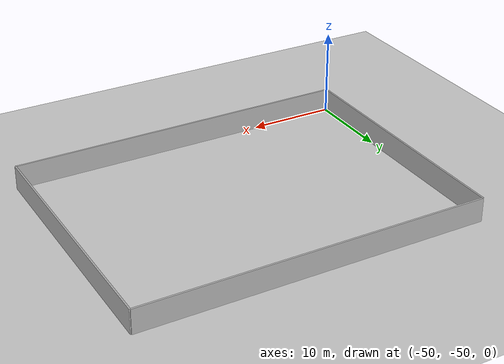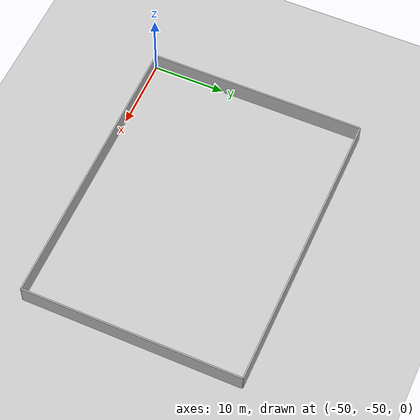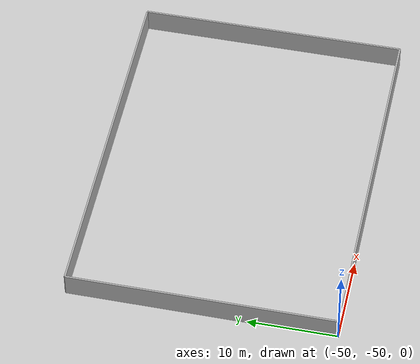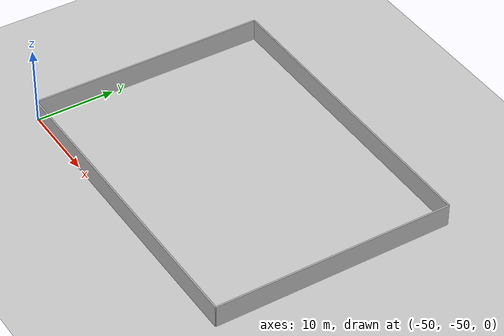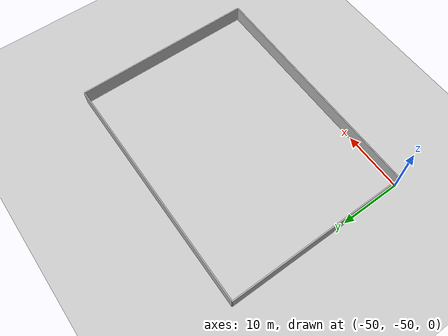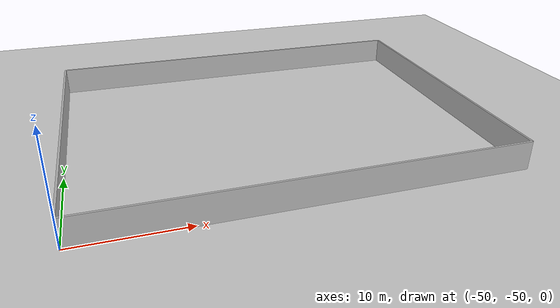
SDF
<sdf version="1.6">
 <world name="default">
  <model name="ground_plane">
   <static>1</static>
   <link name="link">
    <collision name="collision">
     <geometry><plane><normal>0 0 1</normal><size>100 100</size></plane></geometry>
     <surface>
      <contact><collide_bitmask>65535</collide_bitmask></contact>
      <friction><ode><mu>100</mu><mu2>50</mu2></ode></friction>
     </surface>
    </collision>
    <visual name="visual">
     <cast_shadows>0</cast_shadows>
     <geometry><plane><normal>0 0 1</normal><size>100 100</size></plane></geometry>
     <material>
      <script><uri>file://media/materials/scripts/gazebo.material</uri><name>Gazebo/Grey</name></script>
     </material>
    </visual>
   </link>
  </model>
  <model name="concrete_wall">
   <static>1</static>
   <link name="link_1">
    <pose>20 0 1.4 0 -0 0</pose>
    <inertial>
     <inertia><ixx>nan</ixx><ixy>0</ixy><ixz>0</ixz><iyy>nan</iyy><iyz>0</iyz><izz>nan</izz></inertia>
     <mass>0</mass>
    </inertial>
    <visual name="visual_1">
     <cast_shadows>0</cast_shadows>
     <geometry><box><size>40 0.2 2.8</size></box></geometry>
     <material>
      <script>
       <uri>model://env_wall/concrete_wall/materials/scripts</uri>
       <uri>model://env_wall/concrete_wall/materials/textures</uri>
       <name>vrc/concrete_wall</name>
      </script>
      <ambient>1 0.764706 0.305882 1</ambient>
      <shader type="pixel"/>
      <diffuse>0.7 0.7 0.7 1</diffuse>
      <specular>0.01 0.01 0.01 1</specular>
      <emissive>0 0 0 1</emissive>
     </material>
    </visual>
    <collision name="collision_1">
     <geometry><box><size>40 0.2 2.8</size></box></geometry>
     <surface>
      <friction>
       <ode><mu>1</mu><mu2>1</mu2><fdir1>0 0 0</fdir1><slip1>0</slip1><slip2>0</slip2></ode>
       <torsional>
        <coefficient>1</coefficient>
        <patch_radius>0</patch_radius>
        <surface_radius>0</surface_radius>
        <use_patch_radius>1</use_patch_radius>
        <ode><slip>0</slip></ode>
       </torsional>
      </friction>
      <bounce><restitution_coefficient>0</restitution_coefficient><threshold>1e+06</threshold></bounce>
      <contact>
       <collide_without_contact>0</collide_without_contact>
       <collide_without_contact_bitmask>1</collide_without_contact_bitmask>
       <collide_bitmask>1</collide_bitmask>
       <ode>
        <soft_cfm>0</soft_cfm>
        <soft_erp>0.2</soft_erp>
        <kp>1e+13</kp>
        <kd>1</kd>
        <max_vel>0.01</max_vel>
        <min_depth>0</min_depth>
       </ode>
       <bullet>
        <split_impulse>1</split_impulse>
        <split_impulse_penetration_threshold>-0.01</split_impulse_penetration_threshold>
        <soft_cfm>0</soft_cfm>
        <soft_erp>0.2</soft_erp>
        <kp>1e+13</kp>
        <kd>1</kd>
       </bullet>
      </contact>
     </surface>
    </collision>
   </link>
   <link name="link_2">
    <pose>20 30 1.4 0 -0 0</pose>
    <inertial>
     <inertia><ixx>nan</ixx><ixy>0</ixy><ixz>0</ixz><iyy>nan</iyy><iyz>0</iyz><izz>nan</izz></inertia>
     <mass>0</mass>
    </inertial>
    <visual name="visual_2">
     <cast_shadows>0</cast_shadows>
     <geometry><box><size>40 0.2 2.8</size></box></geometry>
     <material>
      <script>
       <uri>model://env_wall/concrete_wall/materials/scripts</uri>
       <uri>model://env_wall/concrete_wall/materials/textures</uri>
       <name>vrc/concrete_wall</name>
      </script>
      <ambient>1 0.764706 0.305882 1</ambient>
      <shader type="pixel"/>
      <diffuse>0.7 0.7 0.7 1</diffuse>
      <specular>0.01 0.01 0.01 1</specular>
      <emissive>0 0 0 1</emissive>
     </material>
    </visual>
    <collision name="collision_2">
     <geometry><box><size>40 0.2 2.8</size></box></geometry>
     <surface>
      <friction>
       <ode><mu>1</mu><mu2>1</mu2><fdir1>0 0 0</fdir1><slip1>0</slip1><slip2>0</slip2></ode>
       <torsional>
        <coefficient>1</coefficient>
        <patch_radius>0</patch_radius>
        <surface_radius>0</surface_radius>
        <use_patch_radius>1</use_patch_radius>
        <ode><slip>0</slip></ode>
       </torsional>
      </friction>
      <bounce><restitution_coefficient>0</restitution_coefficient><threshold>1e+06</threshold></bounce>
      <contact>
       <collide_without_contact>0</collide_without_contact>
       <collide_without_contact_bitmask>1</collide_without_contact_bitmask>
       <collide_bitmask>1</collide_bitmask>
       <ode>
        <soft_cfm>0</soft_cfm>
        <soft_erp>0.2</soft_erp>
        <kp>1e+13</kp>
        <kd>1</kd>
        <max_vel>0.01</max_vel>
        <min_depth>0</min_depth>
       </ode>
       <bullet>
        <split_impulse>1</split_impulse>
        <split_impulse_penetration_threshold>-0.01</split_impulse_penetration_threshold>
        <soft_cfm>0</soft_cfm>
        <soft_erp>0.2</soft_erp>
        <kp>1e+13</kp>
        <kd>1</kd>
       </bullet>
      </contact>
     </surface>
    </collision>
   </link>
   <link name="link_3">
    <pose>0 15 1.4 0 -0 1.57</pose>
    <inertial>
     <inertia><ixx>nan</ixx><ixy>0</ixy><ixz>0</ixz><iyy>nan</iyy><iyz>0</iyz><izz>nan</izz></inertia>
     <mass>0</mass>
    </inertial>
    <visual name="visual_3">
     <cast_shadows>0</cast_shadows>
     <geometry><box><size>30 0.2 2.8</size></box></geometry>
     <material>
      <script>
       <uri>model://env_wall/concrete_wall/materials/scripts</uri>
       <uri>model://env_wall/concrete_wall/materials/textures</uri>
       <name>vrc/concrete_wall</name>
      </script>
      <ambient>1 0.764706 0.305882 1</ambient>
      <shader type="pixel"/>
      <diffuse>0.7 0.7 0.7 1</diffuse>
      <specular>0.01 0.01 0.01 1</specular>
      <emissive>0 0 0 1</emissive>
     </material>
    </visual>
    <collision name="collision_3">
     <geometry><box><size>30 0.2 2.8</size></box></geometry>
     <surface>
      <friction>
       <ode><mu>1</mu><mu2>1</mu2><fdir1>0 0 0</fdir1><slip1>0</slip1><slip2>0</slip2></ode>
       <torsional>
        <coefficient>1</coefficient>
        <patch_radius>0</patch_radius>
        <surface_radius>0</surface_radius>
        <use_patch_radius>1</use_patch_radius>
        <ode><slip>0</slip></ode>
       </torsional>
      </friction>
      <bounce><restitution_coefficient>0</restitution_coefficient><threshold>1e+06</threshold></bounce>
      <contact>
       <collide_without_contact>0</collide_without_contact>
       <collide_without_contact_bitmask>1</collide_without_contact_bitmask>
       <collide_bitmask>1</collide_bitmask>
       <ode>
        <soft_cfm>0</soft_cfm>
        <soft_erp>0.2</soft_erp>
        <kp>1e+13</kp>
        <kd>1</kd>
        <max_vel>0.01</max_vel>
        <min_depth>0</min_depth>
       </ode>
       <bullet>
        <split_impulse>1</split_impulse>
        <split_impulse_penetration_threshold>-0.01</split_impulse_penetration_threshold>
        <soft_cfm>0</soft_cfm>
        <soft_erp>0.2</soft_erp>
        <kp>1e+13</kp>
        <kd>1</kd>
       </bullet>
      </contact>
     </surface>
    </collision>
   </link>
   <link name="link_4">
    <pose>40 15 1.4 0 -0 1.57</pose>
    <inertial>
     <inertia><ixx>nan</ixx><ixy>0</ixy><ixz>0</ixz><iyy>nan</iyy><iyz>0</iyz><izz>nan</izz></inertia>
     <mass>0</mass>
    </inertial>
    <visual name="visual_4">
     <cast_shadows>0</cast_shadows>
     <geometry><box><size>30 0.2 2.8</size></box></geometry>
     <material>
      <script>
       <uri>model://env_wall/concrete_wall/materials/scripts</uri>
       <uri>model://env_wall/concrete_wall/materials/textures</uri>
       <name>vrc/concrete_wall</name>
      </script>
      <ambient>1 0.764706 0.305882 1</ambient>
      <shader type="pixel"/>
      <diffuse>0.7 0.7 0.7 1</diffuse>
      <specular>0.01 0.01 0.01 1</specular>
      <emissive>0 0 0 1</emissive>
     </material>
    </visual>
    <collision name="collision_4">
     <geometry><box><size>30 0.2 2.8</size></box></geometry>
     <surface>
      <friction>
       <ode><mu>1</mu><mu2>1</mu2><fdir1>0 0 0</fdir1><slip1>0</slip1><slip2>0</slip2></ode>
       <torsional>
        <coefficient>1</coefficient>
        <patch_radius>0</patch_radius>
        <surface_radius>0</surface_radius>
        <use_patch_radius>1</use_patch_radius>
        <ode><slip>0</slip></ode>
       </torsional>
      </friction>
      <bounce><restitution_coefficient>0</restitution_coefficient><threshold>1e+06</threshold></bounce>
      <contact>
       <collide_without_contact>0</collide_without_contact>
       <collide_without_contact_bitmask>1</collide_without_contact_bitmask>
       <collide_bitmask>1</collide_bitmask>
       <ode>
        <soft_cfm>0</soft_cfm>
        <soft_erp>0.2</soft_erp>
        <kp>1e+13</kp>
        <kd>1</kd>
        <max_vel>0.01</max_vel>
        <min_depth>0</min_depth>
       </ode>
       <bullet>
        <split_impulse>1</split_impulse>
        <split_impulse_penetration_threshold>-0.01</split_impulse_penetration_threshold>
        <soft_cfm>0</soft_cfm>
        <soft_erp>0.2</soft_erp>
        <kp>1e+13</kp>
        <kd>1</kd>
       </bullet>
      </contact>
     </surface>
    </collision>
   </link>
   <pose>-50 -50 0 0 -0 0</pose>
  </model>
 </world>
</sdf>
